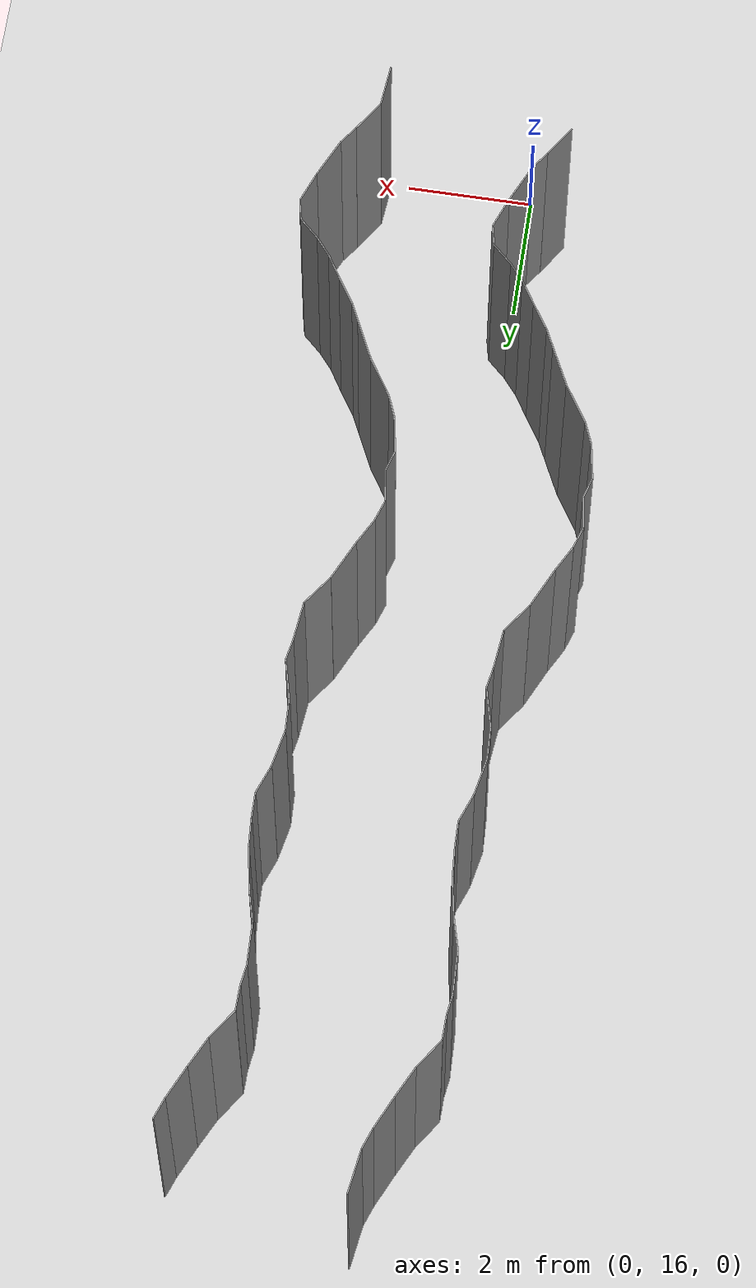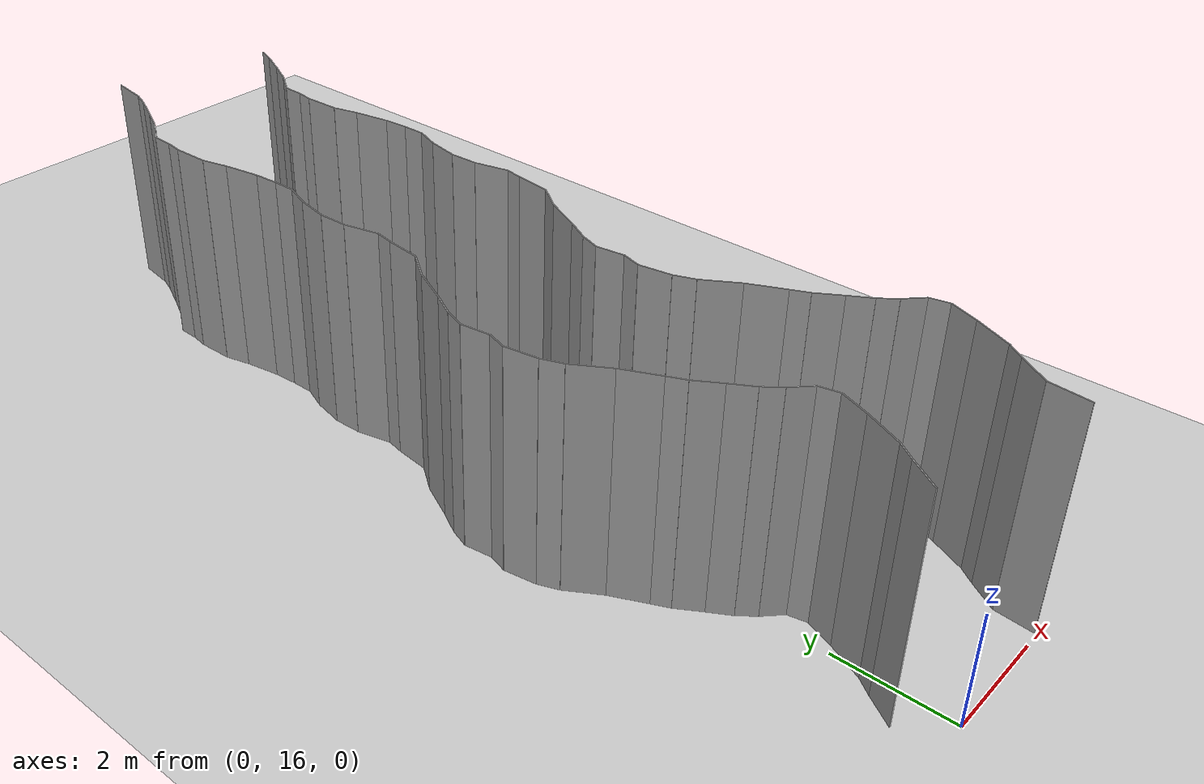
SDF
<sdf version="1.6">
 <world name="default">
  <model name="ground_plane">
   <static>1</static>
   <link name="link">
    <collision name="collision">
     <geometry><plane><normal>0 0 1</normal><size>200 200</size></plane></geometry>
     <surface><friction><ode><mu>100</mu><mu2>50</mu2></ode></friction></surface>
    </collision>
    <visual name="visual">
     <cast_shadows>0</cast_shadows>
     <geometry><plane><normal>0 0 1</normal><size>200 200</size></plane></geometry>
     <material>
      <script><uri>file://media/materials/scripts/gazebo.material</uri><name>Gazebo/Grey</name></script>
     </material>
    </visual>
   </link>
   <pose>0 100 0 0 -0 0</pose>
  </model>
  <model name="wall_73">
   <static>1</static>
   <pose>2.3359705626673497 16.37140859971622 2 0 0 -0.089519372657797</pose>
   <link name="link">
    <collision name="collision"><geometry><box><size>0.02 0.667622813229 4</size></box></geometry></collision>
    <visual name="visual">
     <material>
      <script><name>Gazebo/Grey</name><uri>file://media/materials/scripts/gazebo.material</uri></script>
     </material>
     <geometry><box><size>0.02 0.667622813229 4</size></box></geometry>
    </visual>
   </link>
  </model>
  <model name="wall_74">
   <static>1</static>
   <pose>-0.4746622099451455 16.946811892796788 2 0 0 -0.5810517609372926</pose>
   <link name="link">
    <collision name="collision"><geometry><box><size>0.02 0.581248131145 4</size></box></geometry></collision>
    <visual name="visual">
     <material>
      <script><name>Gazebo/Grey</name><uri>file://media/materials/scripts/gazebo.material</uri></script>
     </material>
     <geometry><box><size>0.02 0.581248131145 4</size></box></geometry>
    </visual>
   </link>
  </model>
  <model name="wall_75">
   <static>1</static>
   <pose>2.5253377900548544 16.946811892796788 2 0 0 -0.5810517609372926</pose>
   <link name="link">
    <collision name="collision"><geometry><box><size>0.02 0.581248131145 4</size></box></geometry></collision>
    <visual name="visual">
     <material>
      <script><name>Gazebo/Grey</name><uri>file://media/materials/scripts/gazebo.material</uri></script>
     </material>
     <geometry><box><size>0.02 0.581248131145 4</size></box></geometry>
    </visual>
   </link>
  </model>
  <model name="wall_76">
   <static>1</static>
   <pose>-0.21723060006269176 17.325044556159224 2 0 0 -0.6263947883843448</pose>
   <link name="link">
    <collision name="collision"><geometry><box><size>0.02 0.334023975592 4</size></box></geometry></collision>
    <visual name="visual">
     <material>
      <script><name>Gazebo/Grey</name><uri>file://media/materials/scripts/gazebo.material</uri></script>
     </material>
     <geometry><box><size>0.02 0.334023975592 4</size></box></geometry>
    </visual>
   </link>
  </model>
  <model name="wall_77">
   <static>1</static>
   <pose>2.782769399937308 17.325044556159224 2 0 0 -0.6263947883843448</pose>
   <link name="link">
    <collision name="collision"><geometry><box><size>0.02 0.334023975592 4</size></box></geometry></collision>
    <visual name="visual">
     <material>
      <script><name>Gazebo/Grey</name><uri>file://media/materials/scripts/gazebo.material</uri></script>
     </material>
     <geometry><box><size>0.02 0.334023975592 4</size></box></geometry>
    </visual>
   </link>
  </model>
  <model name="wall_78">
   <static>1</static>
   <pose>0.02140972928436677 17.767383102350284 2 0 0 -0.42978690551108095</pose>
   <link name="link">
    <collision name="collision"><geometry><box><size>0.02 0.675502713329 4</size></box></geometry></collision>
    <visual name="visual">
     <material>
      <script><name>Gazebo/Grey</name><uri>file://media/materials/scripts/gazebo.material</uri></script>
     </material>
     <geometry><box><size>0.02 0.675502713329 4</size></box></geometry>
    </visual>
   </link>
  </model>
  <model name="wall_79">
   <static>1</static>
   <pose>3.021409729284367 17.767383102350284 2 0 0 -0.42978690551108095</pose>
   <link name="link">
    <collision name="collision"><geometry><box><size>0.02 0.675502713329 4</size></box></geometry></collision>
    <visual name="visual">
     <material>
      <script><name>Gazebo/Grey</name><uri>file://media/materials/scripts/gazebo.material</uri></script>
     </material>
     <geometry><box><size>0.02 0.675502713329 4</size></box></geometry>
    </visual>
   </link>
  </model>
  <model name="wall_80">
   <static>1</static>
   <pose>0.2540347208641519 18.3155219190294 2 0 0 -0.3641326609913609</pose>
   <link name="link">
    <collision name="collision"><geometry><box><size>0.02 0.51604428271 4</size></box></geometry></collision>
    <visual name="visual">
     <material>
      <script><name>Gazebo/Grey</name><uri>file://media/materials/scripts/gazebo.material</uri></script>
     </material>
     <geometry><box><size>0.02 0.51604428271 4</size></box></geometry>
    </visual>
   </link>
  </model>
  <model name="wall_81">
   <static>1</static>
   <pose>3.254034720864152 18.3155219190294 2 0 0 -0.3641326609913609</pose>
   <link name="link">
    <collision name="collision"><geometry><box><size>0.02 0.51604428271 4</size></box></geometry></collision>
    <visual name="visual">
     <material>
      <script><name>Gazebo/Grey</name><uri>file://media/materials/scripts/gazebo.material</uri></script>
     </material>
     <geometry><box><size>0.02 0.51604428271 4</size></box></geometry>
    </visual>
   </link>
  </model>
  <model name="wall_82">
   <static>1</static>
   <pose>0.3101433915641246 18.72050041218852 2 0 0 0.21498268400877432</pose>
   <link name="link">
    <collision name="collision"><geometry><box><size>0.02 0.335470681532 4</size></box></geometry></collision>
    <visual name="visual">
     <material>
      <script><name>Gazebo/Grey</name><uri>file://media/materials/scripts/gazebo.material</uri></script>
     </material>
     <geometry><box><size>0.02 0.335470681532 4</size></box></geometry>
    </visual>
   </link>
  </model>
  <model name="wall_83">
   <static>1</static>
   <pose>3.3101433915641247 18.72050041218852 2 0 0 0.21498268400877432</pose>
   <link name="link">
    <collision name="collision"><geometry><box><size>0.02 0.335470681532 4</size></box></geometry></collision>
    <visual name="visual">
     <material>
      <script><name>Gazebo/Grey</name><uri>file://media/materials/scripts/gazebo.material</uri></script>
     </material>
     <geometry><box><size>0.02 0.335470681532 4</size></box></geometry>
    </visual>
   </link>
  </model>
  <model name="wall_84">
   <static>1</static>
   <pose>0.12541839760383483 19.024857044934873 2 0 0 0.8146181375534328</pose>
   <link name="link">
    <collision name="collision"><geometry><box><size>0.02 0.409482811774 4</size></box></geometry></collision>
    <visual name="visual">
     <material>
      <script><name>Gazebo/Grey</name><uri>file://media/materials/scripts/gazebo.material</uri></script>
     </material>
     <geometry><box><size>0.02 0.409482811774 4</size></box></geometry>
    </visual>
   </link>
  </model>
  <model name="wall_85">
   <static>1</static>
   <pose>3.125418397603835 19.024857044934873 2 0 0 0.8146181375534328</pose>
   <link name="link">
    <collision name="collision"><geometry><box><size>0.02 0.409482811774 4</size></box></geometry></collision>
    <visual name="visual">
     <material>
      <script><name>Gazebo/Grey</name><uri>file://media/materials/scripts/gazebo.material</uri></script>
     </material>
     <geometry><box><size>0.02 0.409482811774 4</size></box></geometry>
    </visual>
   </link>
  </model>
  <model name="wall_86">
   <static>1</static>
   <pose>-0.13272769441017757 19.299824330760707 2 0 0 0.6820267504165978</pose>
   <link name="link">
    <collision name="collision"><geometry><box><size>0.02 0.346477676231 4</size></box></geometry></collision>
    <visual name="visual">
     <material>
      <script><name>Gazebo/Grey</name><uri>file://media/materials/scripts/gazebo.material</uri></script>
     </material>
     <geometry><box><size>0.02 0.346477676231 4</size></box></geometry>
    </visual>
   </link>
  </model>
  <model name="wall_87">
   <static>1</static>
   <pose>2.8672723055898226 19.299824330760707 2 0 0 0.6820267504165978</pose>
   <link name="link">
    <collision name="collision"><geometry><box><size>0.02 0.346477676231 4</size></box></geometry></collision>
    <visual name="visual">
     <material>
      <script><name>Gazebo/Grey</name><uri>file://media/materials/scripts/gazebo.material</uri></script>
     </material>
     <geometry><box><size>0.02 0.346477676231 4</size></box></geometry>
    </visual>
   </link>
  </model>
  <model name="wall_88">
   <static>1</static>
   <pose>-0.35224059748606196 19.615092396662536 2 0 0 0.5478646186729714</pose>
   <link name="link">
    <collision name="collision"><geometry><box><size>0.02 0.42355933909 4</size></box></geometry></collision>
    <visual name="visual">
     <material>
      <script><name>Gazebo/Grey</name><uri>file://media/materials/scripts/gazebo.material</uri></script>
     </material>
     <geometry><box><size>0.02 0.42355933909 4</size></box></geometry>
    </visual>
   </link>
  </model>
  <model name="wall_89">
   <static>1</static>
   <pose>2.647759402513938 19.615092396662536 2 0 0 0.5478646186729714</pose>
   <link name="link">
    <collision name="collision"><geometry><box><size>0.02 0.42355933909 4</size></box></geometry></collision>
    <visual name="visual">
     <material>
      <script><name>Gazebo/Grey</name><uri>file://media/materials/scripts/gazebo.material</uri></script>
     </material>
     <geometry><box><size>0.02 0.42355933909 4</size></box></geometry>
    </visual>
   </link>
  </model>
  <model name="wall_90">
   <static>1</static>
   <pose>-0.5926957462371303 19.999486114378314 2 0 0 0.568740728780493</pose>
   <link name="link">
    <collision name="collision"><geometry><box><size>0.02 0.483302307322 4</size></box></geometry></collision>
    <visual name="visual">
     <material>
      <script><name>Gazebo/Grey</name><uri>file://media/materials/scripts/gazebo.material</uri></script>
     </material>
     <geometry><box><size>0.02 0.483302307322 4</size></box></geometry>
    </visual>
   </link>
  </model>
  <model name="wall_91">
   <static>1</static>
   <pose>2.4073042537628697 19.999486114378314 2 0 0 0.568740728780493</pose>
   <link name="link">
    <collision name="collision"><geometry><box><size>0.02 0.483302307322 4</size></box></geometry></collision>
    <visual name="visual">
     <material>
      <script><name>Gazebo/Grey</name><uri>file://media/materials/scripts/gazebo.material</uri></script>
     </material>
     <geometry><box><size>0.02 0.483302307322 4</size></box></geometry>
    </visual>
   </link>
  </model>
  <model name="wall_92">
   <static>1</static>
   <pose>-0.7902254866682495 20.347244986939284 2 0 0 0.43727661380159893</pose>
   <link name="link">
    <collision name="collision"><geometry><box><size>0.02 0.318240773254 4</size></box></geometry></collision>
    <visual name="visual">
     <material>
      <script><name>Gazebo/Grey</name><uri>file://media/materials/scripts/gazebo.material</uri></script>
     </material>
     <geometry><box><size>0.02 0.318240773254 4</size></box></geometry>
    </visual>
   </link>
  </model>
  <model name="wall_93">
   <static>1</static>
   <pose>2.2097745133317503 20.347244986939284 2 0 0 0.43727661380159893</pose>
   <link name="link">
    <collision name="collision"><geometry><box><size>0.02 0.318240773254 4</size></box></geometry></collision>
    <visual name="visual">
     <material>
      <script><name>Gazebo/Grey</name><uri>file://media/materials/scripts/gazebo.material</uri></script>
     </material>
     <geometry><box><size>0.02 0.318240773254 4</size></box></geometry>
    </visual>
   </link>
  </model>
  <model name="wall_94">
   <static>1</static>
   <pose>-1.0003140166499016 20.78821490990949 2 0 0 0.44815204137412845</pose>
   <link name="link">
    <collision name="collision"><geometry><box><size>0.02 0.658688828261 4</size></box></geometry></collision>
    <visual name="visual">
     <material>
      <script><name>Gazebo/Grey</name><uri>file://media/materials/scripts/gazebo.material</uri></script>
     </material>
     <geometry><box><size>0.02 0.658688828261 4</size></box></geometry>
    </visual>
   </link>
  </model>
  <model name="wall_95">
   <static>1</static>
   <pose>1.9996859833500984 20.78821490990949 2 0 0 0.44815204137412845</pose>
   <link name="link">
    <collision name="collision"><geometry><box><size>0.02 0.658688828261 4</size></box></geometry></collision>
    <visual name="visual">
     <material>
      <script><name>Gazebo/Grey</name><uri>file://media/materials/scripts/gazebo.material</uri></script>
     </material>
     <geometry><box><size>0.02 0.658688828261 4</size></box></geometry>
    </visual>
   </link>
  </model>
  <model name="wall_96">
   <static>1</static>
   <pose>-1.3246246128403782 21.37160470333847 2 0 0 0.5648485588390362</pose>
   <link name="link">
    <collision name="collision"><geometry><box><size>0.02 0.678533534831 4</size></box></geometry></collision>
    <visual name="visual">
     <material>
      <script><name>Gazebo/Grey</name><uri>file://media/materials/scripts/gazebo.material</uri></script>
     </material>
     <geometry><box><size>0.02 0.678533534831 4</size></box></geometry>
    </visual>
   </link>
  </model>
  <model name="wall_97">
   <static>1</static>
   <pose>1.6753753871596218 21.37160470333847 2 0 0 0.5648485588390362</pose>
   <link name="link">
    <collision name="collision"><geometry><box><size>0.02 0.678533534831 4</size></box></geometry></collision>
    <visual name="visual">
     <material>
      <script><name>Gazebo/Grey</name><uri>file://media/materials/scripts/gazebo.material</uri></script>
     </material>
     <geometry><box><size>0.02 0.678533534831 4</size></box></geometry>
    </visual>
   </link>
  </model>
  <model name="wall_98">
   <static>1</static>
   <pose>-1.5750368523656424 21.83238894433098 2 0 0 0.3761467349507813</pose>
   <link name="link">
    <collision name="collision"><geometry><box><size>0.02 0.374622787509 4</size></box></geometry></collision>
    <visual name="visual">
     <material>
      <script><name>Gazebo/Grey</name><uri>file://media/materials/scripts/gazebo.material</uri></script>
     </material>
     <geometry><box><size>0.02 0.374622787509 4</size></box></geometry>
    </visual>
   </link>
  </model>
  <model name="wall_99">
   <static>1</static>
   <pose>1.4249631476343576 21.83238894433098 2 0 0 0.3761467349507813</pose>
   <link name="link">
    <collision name="collision"><geometry><box><size>0.02 0.374622787509 4</size></box></geometry></collision>
    <visual name="visual">
     <material>
      <script><name>Gazebo/Grey</name><uri>file://media/materials/scripts/gazebo.material</uri></script>
     </material>
     <geometry><box><size>0.02 0.374622787509 4</size></box></geometry>
    </visual>
   </link>
  </model>
  <model name="wall_100">
   <static>1</static>
   <pose>-1.6904662633644694 22.28744418807955 2 0 0 0.1645111718299083</pose>
   <link name="link">
    <collision name="collision"><geometry><box><size>0.02 0.569365984192 4</size></box></geometry></collision>
    <visual name="visual">
     <material>
      <script><name>Gazebo/Grey</name><uri>file://media/materials/scripts/gazebo.material</uri></script>
     </material>
     <geometry><box><size>0.02 0.569365984192 4</size></box></geometry>
    </visual>
   </link>
  </model>
  <model name="wall_101">
   <static>1</static>
   <pose>1.3095337366355306 22.28744418807955 2 0 0 0.1645111718299083</pose>
   <link name="link">
    <collision name="collision"><geometry><box><size>0.02 0.569365984192 4</size></box></geometry></collision>
    <visual name="visual">
     <material>
      <script><name>Gazebo/Grey</name><uri>file://media/materials/scripts/gazebo.material</uri></script>
     </material>
     <geometry><box><size>0.02 0.569365984192 4</size></box></geometry>
    </visual>
   </link>
  </model>
  <model name="wall_102">
   <static>1</static>
   <pose>-1.6898516029422492 22.73221507137826 2 0 0 -0.28055211247835915</pose>
   <link name="link">
    <collision name="collision"><geometry><box><size>0.02 0.341203179762 4</size></box></geometry></collision>
    <visual name="visual">
     <material>
      <script><name>Gazebo/Grey</name><uri>file://media/materials/scripts/gazebo.material</uri></script>
     </material>
     <geometry><box><size>0.02 0.341203179762 4</size></box></geometry>
    </visual>
   </link>
  </model>
  <model name="wall_103">
   <static>1</static>
   <pose>1.3101483970577508 22.73221507137826 2 0 0 -0.28055211247835915</pose>
   <link name="link">
    <collision name="collision"><geometry><box><size>0.02 0.341203179762 4</size></box></geometry></collision>
    <visual name="visual">
     <material>
      <script><name>Gazebo/Grey</name><uri>file://media/materials/scripts/gazebo.material</uri></script>
     </material>
     <geometry><box><size>0.02 0.341203179762 4</size></box></geometry>
    </visual>
   </link>
  </model>
  <model name="wall_104">
   <static>1</static>
   <pose>-1.6775298043004725 23.14427193477369 2 0 0 0.13979900111842058</pose>
   <link name="link">
    <collision name="collision"><geometry><box><size>0.02 0.501139773357 4</size></box></geometry></collision>
    <visual name="visual">
     <material>
      <script><name>Gazebo/Grey</name><uri>file://media/materials/scripts/gazebo.material</uri></script>
     </material>
     <geometry><box><size>0.02 0.501139773357 4</size></box></geometry>
    </visual>
   </link>
  </model>
  <model name="wall_105">
   <static>1</static>
   <pose>1.3224701956995275 23.14427193477369 2 0 0 0.13979900111842058</pose>
   <link name="link">
    <collision name="collision"><geometry><box><size>0.02 0.501139773357 4</size></box></geometry></collision>
    <visual name="visual">
     <material>
      <script><name>Gazebo/Grey</name><uri>file://media/materials/scripts/gazebo.material</uri></script>
     </material>
     <geometry><box><size>0.02 0.501139773357 4</size></box></geometry>
    </visual>
   </link>
  </model>
  <model name="wall_106">
   <static>1</static>
   <pose>-1.6561803606753438 23.562195491517 2 0 0 -0.3199763401234654</pose>
   <link name="link">
    <collision name="collision"><geometry><box><size>0.02 0.357755071732 4</size></box></geometry></collision>
    <visual name="visual">
     <material>
      <script><name>Gazebo/Grey</name><uri>file://media/materials/scripts/gazebo.material</uri></script>
     </material>
     <geometry><box><size>0.02 0.357755071732 4</size></box></geometry>
    </visual>
   </link>
  </model>
  <model name="wall_107">
   <static>1</static>
   <pose>1.3438196393246562 23.562195491517 2 0 0 -0.3199763401234654</pose>
   <link name="link">
    <collision name="collision"><geometry><box><size>0.02 0.357755071732 4</size></box></geometry></collision>
    <visual name="visual">
     <material>
      <script><name>Gazebo/Grey</name><uri>file://media/materials/scripts/gazebo.material</uri></script>
     </material>
     <geometry><box><size>0.02 0.357755071732 4</size></box></geometry>
    </visual>
   </link>
  </model>
  <model name="wall_108">
   <static>1</static>
   <pose>-1.4920095947423302 23.93446491242675 2 0 0 -0.48965448011782287</pose>
   <link name="link">
    <collision name="collision"><geometry><box><size>0.02 0.458860620247 4</size></box></geometry></collision>
    <visual name="visual">
     <material>
      <script><name>Gazebo/Grey</name><uri>file://media/materials/scripts/gazebo.material</uri></script>
     </material>
     <geometry><box><size>0.02 0.458860620247 4</size></box></geometry>
    </visual>
   </link>
  </model>
  <model name="wall_109">
   <static>1</static>
   <pose>1.5079904052576698 23.93446491242675 2 0 0 -0.48965448011782287</pose>
   <link name="link">
    <collision name="collision"><geometry><box><size>0.02 0.458860620247 4</size></box></geometry></collision>
    <visual name="visual">
     <material>
      <script><name>Gazebo/Grey</name><uri>file://media/materials/scripts/gazebo.material</uri></script>
     </material>
     <geometry><box><size>0.02 0.458860620247 4</size></box></geometry>
    </visual>
   </link>
  </model>
  <model name="wall_110">
   <static>1</static>
   <pose>-1.2376411992100302 24.450309446481768 2 0 0 -0.43720771985774703</pose>
   <link name="link">
    <collision name="collision"><geometry><box><size>0.02 0.691821113377 4</size></box></geometry></collision>
    <visual name="visual">
     <material>
      <script><name>Gazebo/Grey</name><uri>file://media/materials/scripts/gazebo.material</uri></script>
     </material>
     <geometry><box><size>0.02 0.691821113377 4</size></box></geometry>
    </visual>
   </link>
  </model>
  <model name="wall_111">
   <static>1</static>
   <pose>1.7623588007899698 24.450309446481768 2 0 0 -0.43720771985774703</pose>
   <link name="link">
    <collision name="collision"><geometry><box><size>0.02 0.691821113377 4</size></box></geometry></collision>
    <visual name="visual">
     <material>
      <script><name>Gazebo/Grey</name><uri>file://media/materials/scripts/gazebo.material</uri></script>
     </material>
     <geometry><box><size>0.02 0.691821113377 4</size></box></geometry>
    </visual>
   </link>
  </model>
  <model name="wall_112">
   <static>1</static>
   <pose>-0.9268422863930121 24.991755645856532 2 0 0 -0.6243808768590035</pose>
   <link name="link">
    <collision name="collision"><geometry><box><size>0.02 0.562223037661 4</size></box></geometry></collision>
    <visual name="visual">
     <material>
      <script><name>Gazebo/Grey</name><uri>file://media/materials/scripts/gazebo.material</uri></script>
     </material>
     <geometry><box><size>0.02 0.562223037661 4</size></box></geometry>
    </visual>
   </link>
  </model>
  <model name="wall_113">
   <static>1</static>
   <pose>2.073157713606988 24.991755645856532 2 0 0 -0.6243808768590035</pose>
   <link name="link">
    <collision name="collision"><geometry><box><size>0.02 0.562223037661 4</size></box></geometry></collision>
    <visual name="visual">
     <material>
      <script><name>Gazebo/Grey</name><uri>file://media/materials/scripts/gazebo.material</uri></script>
     </material>
     <geometry><box><size>0.02 0.562223037661 4</size></box></geometry>
    </visual>
   </link>
  </model>
  <model name="wall_114">
   <static>1</static>
   <pose>-0.7293658690208725 25.530464911098065 2 0 0 -0.1062822367214286</pose>
   <link name="link">
    <collision name="collision"><geometry><box><size>0.02 0.624798319103 4</size></box></geometry></collision>
    <visual name="visual">
     <material>
      <script><name>Gazebo/Grey</name><uri>file://media/materials/scripts/gazebo.material</uri></script>
     </material>
     <geometry><box><size>0.02 0.624798319103 4</size></box></geometry>
    </visual>
   </link>
  </model>
  <model name="wall_115">
   <static>1</static>
   <pose>2.2706341309791274 25.530464911098065 2 0 0 -0.1062822367214286</pose>
   <link name="link">
    <collision name="collision"><geometry><box><size>0.02 0.624798319103 4</size></box></geometry></collision>
    <visual name="visual">
     <material>
      <script><name>Gazebo/Grey</name><uri>file://media/materials/scripts/gazebo.material</uri></script>
     </material>
     <geometry><box><size>0.02 0.624798319103 4</size></box></geometry>
    </visual>
   </link>
  </model>
  <model name="wall_116">
   <static>1</static>
   <pose>-0.6671350730189887 25.999951755428462 2 0 0 -0.18112613200859926</pose>
   <link name="link">
    <collision name="collision"><geometry><box><size>0.02 0.322984437484 4</size></box></geometry></collision>
    <visual name="visual">
     <material>
      <script><name>Gazebo/Grey</name><uri>file://media/materials/scripts/gazebo.material</uri></script>
     </material>
     <geometry><box><size>0.02 0.322984437484 4</size></box></geometry>
    </visual>
   </link>
  </model>
  <model name="wall_117">
   <static>1</static>
   <pose>2.3328649269810113 25.999951755428462 2 0 0 -0.18112613200859926</pose>
   <link name="link">
    <collision name="collision"><geometry><box><size>0.02 0.322984437484 4</size></box></geometry></collision>
    <visual name="visual">
     <material>
      <script><name>Gazebo/Grey</name><uri>file://media/materials/scripts/gazebo.material</uri></script>
     </material>
     <geometry><box><size>0.02 0.322984437484 4</size></box></geometry>
    </visual>
   </link>
  </model>
  <model name="wall_118">
   <static>1</static>
   <pose>-0.7134645054450843 26.46766575166047 2 0 0 0.23949941897299304</pose>
   <link name="link">
    <collision name="collision"><geometry><box><size>0.02 0.635877048138 4</size></box></geometry></collision>
    <visual name="visual">
     <material>
      <script><name>Gazebo/Grey</name><uri>file://media/materials/scripts/gazebo.material</uri></script>
     </material>
     <geometry><box><size>0.02 0.635877048138 4</size></box></geometry>
    </visual>
   </link>
  </model>
  <model name="wall_119">
   <static>1</static>
   <pose>2.286535494554916 26.46766575166047 2 0 0 0.23949941897299304</pose>
   <link name="link">
    <collision name="collision"><geometry><box><size>0.02 0.635877048138 4</size></box></geometry></collision>
    <visual name="visual">
     <material>
      <script><name>Gazebo/Grey</name><uri>file://media/materials/scripts/gazebo.material</uri></script>
     </material>
     <geometry><box><size>0.02 0.635877048138 4</size></box></geometry>
    </visual>
   </link>
  </model>
  <model name="wall_120">
   <static>1</static>
   <pose>-0.7987097538755683 27.03052795626082 2 0 0 0.038662143110134065</pose>
   <link name="link">
    <collision name="collision"><geometry><box><size>0.02 0.508377203714 4</size></box></geometry></collision>
    <visual name="visual">
     <material>
      <script><name>Gazebo/Grey</name><uri>file://media/materials/scripts/gazebo.material</uri></script>
     </material>
     <geometry><box><size>0.02 0.508377203714 4</size></box></geometry>
    </visual>
   </link>
  </model>
  <model name="wall_121">
   <static>1</static>
   <pose>2.2012902461244317 27.03052795626082 2 0 0 0.038662143110134065</pose>
   <link name="link">
    <collision name="collision"><geometry><box><size>0.02 0.508377203714 4</size></box></geometry></collision>
    <visual name="visual">
     <material>
      <script><name>Gazebo/Grey</name><uri>file://media/materials/scripts/gazebo.material</uri></script>
     </material>
     <geometry><box><size>0.02 0.508377203714 4</size></box></geometry>
    </visual>
   </link>
  </model>
  <model name="wall_122">
   <static>1</static>
   <pose>-0.7516970833791549 27.57573666122895 2 0 0 -0.19275442823038355</pose>
   <link name="link">
    <collision name="collision"><geometry><box><size>0.02 0.593409875741 4</size></box></geometry></collision>
    <visual name="visual">
     <material>
      <script><name>Gazebo/Grey</name><uri>file://media/materials/scripts/gazebo.material</uri></script>
     </material>
     <geometry><box><size>0.02 0.593409875741 4</size></box></geometry>
    </visual>
   </link>
  </model>
  <model name="wall_123">
   <static>1</static>
   <pose>2.2483029166208452 27.57573666122895 2 0 0 -0.19275442823038355</pose>
   <link name="link">
    <collision name="collision"><geometry><box><size>0.02 0.593409875741 4</size></box></geometry></collision>
    <visual name="visual">
     <material>
      <script><name>Gazebo/Grey</name><uri>file://media/materials/scripts/gazebo.material</uri></script>
     </material>
     <geometry><box><size>0.02 0.593409875741 4</size></box></geometry>
    </visual>
   </link>
  </model>
  <model name="wall_124">
   <static>1</static>
   <pose>-0.611974705358262 28.089344740829944 2 0 0 -0.3567406110789119</pose>
   <link name="link">
    <collision name="collision"><geometry><box><size>0.02 0.47468200474 4</size></box></geometry></collision>
    <visual name="visual">
     <material>
      <script><name>Gazebo/Grey</name><uri>file://media/materials/scripts/gazebo.material</uri></script>
     </material>
     <geometry><box><size>0.02 0.47468200474 4</size></box></geometry>
    </visual>
   </link>
  </model>
  <model name="wall_125">
   <static>1</static>
   <pose>2.388025294641738 28.089344740829944 2 0 0 -0.3567406110789119</pose>
   <link name="link">
    <collision name="collision"><geometry><box><size>0.02 0.47468200474 4</size></box></geometry></collision>
    <visual name="visual">
     <material>
      <script><name>Gazebo/Grey</name><uri>file://media/materials/scripts/gazebo.material</uri></script>
     </material>
     <geometry><box><size>0.02 0.47468200474 4</size></box></geometry>
    </visual>
   </link>
  </model>
  <model name="wall_126">
   <static>1</static>
   <pose>-0.5318097291428248 28.513987015472303 2 0 0 0.013446806949164915</pose>
   <link name="link">
    <collision name="collision"><geometry><box><size>0.02 0.404525072143 4</size></box></geometry></collision>
    <visual name="visual">
     <material>
      <script><name>Gazebo/Grey</name><uri>file://media/materials/scripts/gazebo.material</uri></script>
     </material>
     <geometry><box><size>0.02 0.404525072143 4</size></box></geometry>
    </visual>
   </link>
  </model>
  <model name="wall_127">
   <static>1</static>
   <pose>2.4681902708571752 28.513987015472303 2 0 0 0.013446806949164915</pose>
   <link name="link">
    <collision name="collision"><geometry><box><size>0.02 0.404525072143 4</size></box></geometry></collision>
    <visual name="visual">
     <material>
      <script><name>Gazebo/Grey</name><uri>file://media/materials/scripts/gazebo.material</uri></script>
     </material>
     <geometry><box><size>0.02 0.404525072143 4</size></box></geometry>
    </visual>
   </link>
  </model>
  <model name="wall_128">
   <static>1</static>
   <pose>-0.5504478397431747 28.93944356863965 2 0 0 0.071194566552359</pose>
   <link name="link">
    <collision name="collision"><geometry><box><size>0.02 0.447558389113 4</size></box></geometry></collision>
    <visual name="visual">
     <material>
      <script><name>Gazebo/Grey</name><uri>file://media/materials/scripts/gazebo.material</uri></script>
     </material>
     <geometry><box><size>0.02 0.447558389113 4</size></box></geometry>
    </visual>
   </link>
  </model>
  <model name="wall_129">
   <static>1</static>
   <pose>2.4495521602568253 28.93944356863965 2 0 0 0.071194566552359</pose>
   <link name="link">
    <collision name="collision"><geometry><box><size>0.02 0.447558389113 4</size></box></geometry></collision>
    <visual name="visual">
     <material>
      <script><name>Gazebo/Grey</name><uri>file://media/materials/scripts/gazebo.material</uri></script>
     </material>
     <geometry><box><size>0.02 0.447558389113 4</size></box></geometry>
    </visual>
   </link>
  </model>
  <model name="wall_130">
   <static>1</static>
   <pose>-0.6252113315931646 29.491803261306075 2 0 0 0.17691131119338935</pose>
   <link name="link">
    <collision name="collision"><geometry><box><size>0.02 0.6687323772 4</size></box></geometry></collision>
    <visual name="visual">
     <material>
      <script><name>Gazebo/Grey</name><uri>file://media/materials/scripts/gazebo.material</uri></script>
     </material>
     <geometry><box><size>0.02 0.6687323772 4</size></box></geometry>
    </visual>
   </link>
  </model>
  <model name="wall_131">
   <static>1</static>
   <pose>2.3747886684068353 29.491803261306075 2 0 0 0.17691131119338935</pose>
   <link name="link">
    <collision name="collision"><geometry><box><size>0.02 0.6687323772 4</size></box></geometry></collision>
    <visual name="visual">
     <material>
      <script><name>Gazebo/Grey</name><uri>file://media/materials/scripts/gazebo.material</uri></script>
     </material>
     <geometry><box><size>0.02 0.6687323772 4</size></box></geometry>
    </visual>
   </link>
  </model>
  <model name="wall_132">
   <static>1</static>
   <pose>-0.7460952597265171 30.055462021279688 2 0 0 0.2586206702953351</pose>
   <link name="link">
    <collision name="collision"><geometry><box><size>0.02 0.485157297919 4</size></box></geometry></collision>
    <visual name="visual">
     <material>
      <script><name>Gazebo/Grey</name><uri>file://media/materials/scripts/gazebo.material</uri></script>
     </material>
     <geometry><box><size>0.02 0.485157297919 4</size></box></geometry>
    </visual>
   </link>
  </model>
  <model name="wall_133">
   <static>1</static>
   <pose>2.253904740273483 30.055462021279688 2 0 0 0.2586206702953351</pose>
   <link name="link">
    <collision name="collision"><geometry><box><size>0.02 0.485157297919 4</size></box></geometry></collision>
    <visual name="visual">
     <material>
      <script><name>Gazebo/Grey</name><uri>file://media/materials/scripts/gazebo.material</uri></script>
     </material>
     <geometry><box><size>0.02 0.485157297919 4</size></box></geometry>
    </visual>
   </link>
  </model>
  <model name="wall_134">
   <static>1</static>
   <pose>-0.8187547486050389 30.626260050996713 2 0 0 0.03157162499767826</pose>
   <link name="link">
    <collision name="collision"><geometry><box><size>0.02 0.672908657638 4</size></box></geometry></collision>
    <visual name="visual">
     <material>
      <script><name>Gazebo/Grey</name><uri>file://media/materials/scripts/gazebo.material</uri></script>
     </material>
     <geometry><box><size>0.02 0.672908657638 4</size></box></geometry>
    </visual>
   </link>
  </model>
  <model name="wall_135">
   <static>1</static>
   <pose>2.181245251394961 30.626260050996713 2 0 0 0.03157162499767826</pose>
   <link name="link">
    <collision name="collision"><geometry><box><size>0.02 0.672908657638 4</size></box></geometry></collision>
    <visual name="visual">
     <material>
      <script><name>Gazebo/Grey</name><uri>file://media/materials/scripts/gazebo.material</uri></script>
     </material>
     <geometry><box><size>0.02 0.672908657638 4</size></box></geometry>
    </visual>
   </link>
  </model>
  <model name="wall_136">
   <static>1</static>
   <pose>-0.8072879254963021 31.118244707692906 2 0 0 -0.14092066612787804</pose>
   <link name="link">
    <collision name="collision"><geometry><box><size>0.02 0.31451373662 4</size></box></geometry></collision>
    <visual name="visual">
     <material>
      <script><name>Gazebo/Grey</name><uri>file://media/materials/scripts/gazebo.material</uri></script>
     </material>
     <geometry><box><size>0.02 0.31451373662 4</size></box></geometry>
    </visual>
   </link>
  </model>
  <model name="wall_137">
   <static>1</static>
   <pose>2.1927120745036977 31.118244707692906 2 0 0 -0.14092066612787804</pose>
   <link name="link">
    <collision name="collision"><geometry><box><size>0.02 0.31451373662 4</size></box></geometry></collision>
    <visual name="visual">
     <material>
      <script><name>Gazebo/Grey</name><uri>file://media/materials/scripts/gazebo.material</uri></script>
     </material>
     <geometry><box><size>0.02 0.31451373662 4</size></box></geometry>
    </visual>
   </link>
  </model>
  <model name="wall_138">
   <static>1</static>
   <pose>-0.7807702191157019 31.467330532063873 2 0 0 -0.02290456062330047</pose>
   <link name="link">
    <collision name="collision"><geometry><box><size>0.02 0.386877131192 4</size></box></geometry></collision>
    <visual name="visual">
     <material>
      <script><name>Gazebo/Grey</name><uri>file://media/materials/scripts/gazebo.material</uri></script>
     </material>
     <geometry><box><size>0.02 0.386877131192 4</size></box></geometry>
    </visual>
   </link>
  </model>
  <model name="wall_139">
   <static>1</static>
   <pose>2.219229780884298 31.467330532063873 2 0 0 -0.02290456062330047</pose>
   <link name="link">
    <collision name="collision"><geometry><box><size>0.02 0.386877131192 4</size></box></geometry></collision>
    <visual name="visual">
     <material>
      <script><name>Gazebo/Grey</name><uri>file://media/materials/scripts/gazebo.material</uri></script>
     </material>
     <geometry><box><size>0.02 0.386877131192 4</size></box></geometry>
    </visual>
   </link>
  </model>
  <model name="wall_140">
   <static>1</static>
   <pose>-0.6198552157900041 31.891685763366972 2 0 0 -0.5954780571111524</pose>
   <link name="link">
    <collision name="collision"><geometry><box><size>0.02 0.557972843846 4</size></box></geometry></collision>
    <visual name="visual">
     <material>
      <script><name>Gazebo/Grey</name><uri>file://media/materials/scripts/gazebo.material</uri></script>
     </material>
     <geometry><box><size>0.02 0.557972843846 4</size></box></geometry>
    </visual>
   </link>
  </model>
  <model name="wall_141">
   <static>1</static>
   <pose>2.380144784209996 31.891685763366972 2 0 0 -0.5954780571111524</pose>
   <link name="link">
    <collision name="collision"><geometry><box><size>0.02 0.557972843846 4</size></box></geometry></collision>
    <visual name="visual">
     <material>
      <script><name>Gazebo/Grey</name><uri>file://media/materials/scripts/gazebo.material</uri></script>
     </material>
     <geometry><box><size>0.02 0.557972843846 4</size></box></geometry>
    </visual>
   </link>
  </model>
  <model name="wall_142">
   <static>1</static>
   <pose>-0.3481453158747003 32.356872822223096 2 0 0 -0.457189560830789</pose>
   <link name="link">
    <collision name="collision"><geometry><box><size>0.02 0.522056235422 4</size></box></geometry></collision>
    <visual name="visual">
     <material>
      <script><name>Gazebo/Grey</name><uri>file://media/materials/scripts/gazebo.material</uri></script>
     </material>
     <geometry><box><size>0.02 0.522056235422 4</size></box></geometry>
    </visual>
   </link>
  </model>
  <model name="wall_143">
   <static>1</static>
   <pose>2.6518546841252997 32.356872822223096 2 0 0 -0.457189560830789</pose>
   <link name="link">
    <collision name="collision"><geometry><box><size>0.02 0.522056235422 4</size></box></geometry></collision>
    <visual name="visual">
     <material>
      <script><name>Gazebo/Grey</name><uri>file://media/materials/scripts/gazebo.material</uri></script>
     </material>
     <geometry><box><size>0.02 0.522056235422 4</size></box></geometry>
    </visual>
   </link>
  </model>
  <model name="wall_144">
   <static>1</static>
   <pose>-0.1141920791393208 32.84863334346636 2 0 0 -0.431969426782447</pose>
   <link name="link">
    <collision name="collision"><geometry><box><size>0.02 0.567181312235 4</size></box></geometry></collision>
    <visual name="visual">
     <material>
      <script><name>Gazebo/Grey</name><uri>file://media/materials/scripts/gazebo.material</uri></script>
     </material>
     <geometry><box><size>0.02 0.567181312235 4</size></box></geometry>
    </visual>
   </link>
  </model>
  <model name="wall_145">
   <static>1</static>
   <pose>2.885807920860679 32.84863334346636 2 0 0 -0.431969426782447</pose>
   <link name="link">
    <collision name="collision"><geometry><box><size>0.02 0.567181312235 4</size></box></geometry></collision>
    <visual name="visual">
     <material>
      <script><name>Gazebo/Grey</name><uri>file://media/materials/scripts/gazebo.material</uri></script>
     </material>
     <geometry><box><size>0.02 0.567181312235 4</size></box></geometry>
    </visual>
   </link>
  </model>
  <model name="wall_146">
   <static>1</static>
   <pose>0.06313398112463263 33.26749050246387 2 0 0 -0.3484287066024535</pose>
   <link name="link">
    <collision name="collision"><geometry><box><size>0.02 0.3432588928 4</size></box></geometry></collision>
    <visual name="visual">
     <material>
      <script><name>Gazebo/Grey</name><uri>file://media/materials/scripts/gazebo.material</uri></script>
     </material>
     <geometry><box><size>0.02 0.3432588928 4</size></box></geometry>
    </visual>
   </link>
  </model>
  <model name="wall_147">
   <static>1</static>
   <pose>3.0631339811246328 33.26749050246387 2 0 0 -0.3484287066024535</pose>
   <link name="link">
    <collision name="collision"><geometry><box><size>0.02 0.3432588928 4</size></box></geometry></collision>
    <visual name="visual">
     <material>
      <script><name>Gazebo/Grey</name><uri>file://media/materials/scripts/gazebo.material</uri></script>
     </material>
     <geometry><box><size>0.02 0.3432588928 4</size></box></geometry>
    </visual>
   </link>
  </model>
  <model name="wall_148">
   <static>1</static>
   <pose>0.1716081435649121 33.77311042109555 2 0 0 -0.14386038586667088</pose>
   <link name="link">
    <collision name="collision"><geometry><box><size>0.02 0.695794862949 4</size></box></geometry></collision>
    <visual name="visual">
     <material>
      <script><name>Gazebo/Grey</name><uri>file://media/materials/scripts/gazebo.material</uri></script>
     </material>
     <geometry><box><size>0.02 0.695794862949 4</size></box></geometry>
    </visual>
   </link>
  </model>
 </world>
</sdf>
